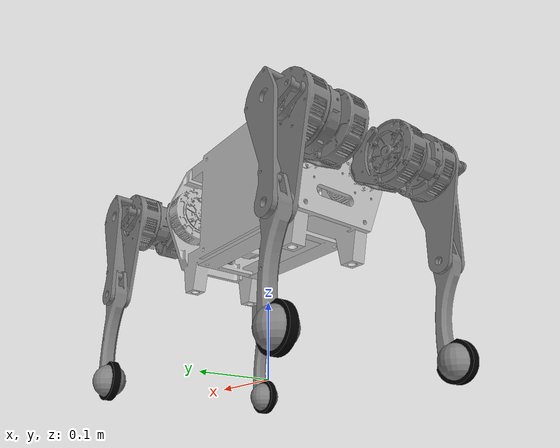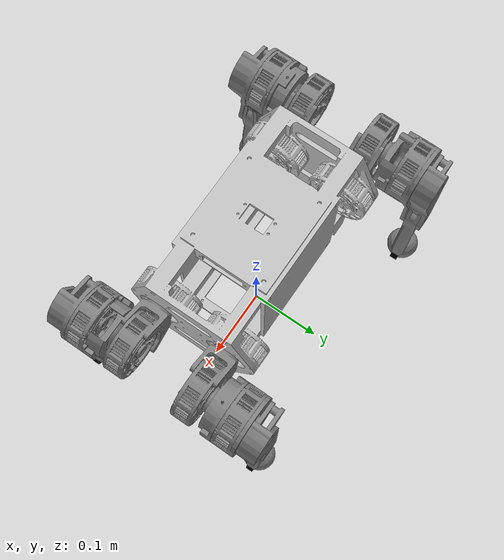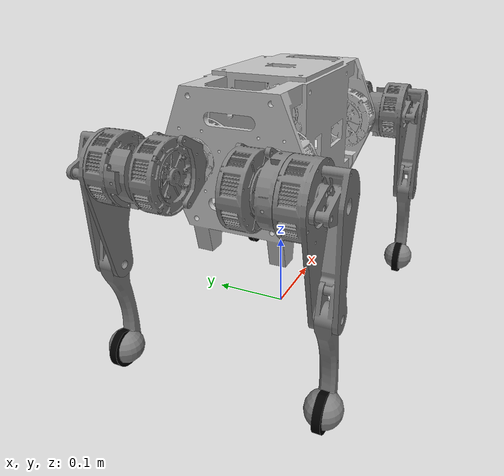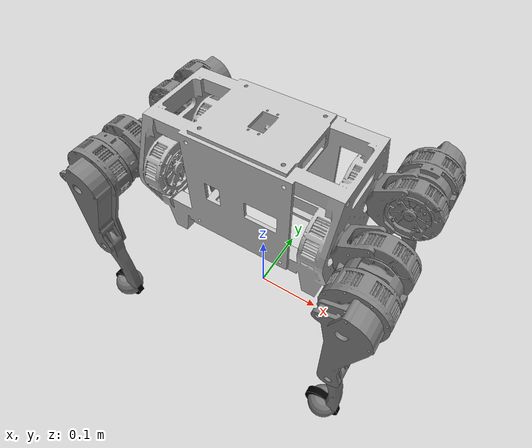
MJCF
<mujoco model="mbf">
  <compiler angle="radian" meshdir="assets" autolimits="true" balanceinertia="true"/>

  <default>
    <default class="robot">
      <default class="shoulder_joint">
        <joint armature="0.003" damping="0.135" frictionloss="0.228"/>
      </default>
      <default class="hip_joint">
        <joint armature="0.003" damping="0.175" frictionloss="0.092"/>
      </default>
      <default class="knee_joint">
        <joint armature="0.003" damping="0.176" frictionloss="0.146"/>
      </default>
      <default class="visual">
        <geom type="mesh" contype="0" conaffinity="0" group="2"/>
      </default>
      <default class="collision">
        <geom type="mesh" contype="1" conaffinity="1" group="3"/>
        <default class="foot">
          <geom type="sphere" size="0.022"/>
        </default>
      </default>
    </default>
  </default>

  <asset>
    <material name="chassis_material" rgba="0.74902 0.74902 0.74902 1"/>
    <material name="shoulder_material" rgba="0.498039 0.498039 0.498039 1"/>
    <material name="hip_material" rgba="0.498039 0.498039 0.498039 1"/>
    <material name="knee_material" rgba="0.498039 0.498039 0.498039 1"/>
    <material name="feet_material" rgba="0 0 0 1"/>

    <mesh name="chassis" file="chassis.stl"/>
    <mesh name="shoulder" file="shoulder.stl"/>
    <mesh name="lefthip" file="lefthip.stl"/>
    <mesh name="rightthip" file="rightthip.stl"/>
    <mesh name="leftknee" file="leftknee.stl"/>
    <mesh name="rightknee" file="rightknee.stl"/>
    <mesh name="feet" file="feet.stl"/>
  </asset>

  <worldbody>
    <!-- Kinematics / inertias match mbf_description/urdf/mbf.urdf. -->
    <body name="chassis" pos="0 0 0.25" childclass="robot">
      <freejoint name="floating_base"/>
      <inertial pos="-7.49398e-05 0.00038654 -0.00334968" mass="2.5"
        fullinertia="0.0140758 0.0300982 0.032291 -1.03544e-05 1.89531e-06 -3.2478e-06"/>
      <camera name="tracking" pos="0.846 -1.3 0.316"
        xyaxes="0.866 0.500 0.000 -0.171 0.296 0.940" mode="trackcom"/>
      <camera name="side" pos="0 -1 .3" xyaxes="1 0 0 0 1 2" mode="trackcom"/>
      <camera name="back" pos="-1 0 .3" xyaxes="0 -1 0 1 0 2" mode="trackcom"/>
      <site name="imu" pos="0 0 0" group="5"/>
      <geom name="chassis_visual" mesh="chassis" material="chassis_material" class="visual"/>
      <geom name="chassis_collision" mesh="chassis" class="collision"/>

      <!-- FL -->
      <body name="fl_shoulder_link" pos="0.1835 0.0475 0">
        <inertial pos="-0.00598552 0.00880498 0.00146505" mass="0.42"
          fullinertia="0.000238461 0.000387612 0.00033247 -2.21138e-05 -3.70032e-06 -1.53448e-05"/>
        <joint name="fl_shoulder_joint" class="shoulder_joint"
          axis="1 0 0" range="-1.0472 1.0472"/>
        <!-- URDF visual rpy = (pi, 0, pi/2) -->
        <geom name="fl_shoulder_link_visual" quat="0 0.707107 0.707107 0" mesh="shoulder"
          material="shoulder_material" class="visual"/>
        <geom name="fl_shoulder_link_collision" type="box" quat="0 0.707107 0.707107 0"
          pos="-0.0075 0.0123 0" size="0.0302 0.0475 0.04" class="collision"/>
        <body name="fl_hip_link" pos="0 0.0835 0">
          <inertial pos="0.000597466 -0.0146741 -0.0153971" mass="0.7"
            fullinertia="0.0011656 0.00123583 0.000397878 -1.25867e-05 -1.45116e-05 0.000143806"/>
          <joint name="fl_hip_joint" class="hip_joint"
            axis="0 1 0" range="-1.7 3.5"/>
          <geom name="fl_hip_link_visual" mesh="lefthip" material="hip_material" class="visual"/>
          <geom name="fl_hip_link_collision" type="capsule" pos="0 -0.0148 -0.0475"
            size="0.0345 0.0530" class="collision"/>
          <body name="fl_knee_link" pos="0 0 -0.12">
            <inertial pos="0.00415201 -2.15069e-05 -0.0486477" mass="0.1"
              fullinertia="0.000258578 0.000265226 1.25963e-05 4.362e-09 9.89836e-06 -1.9627e-08"/>
            <joint name="fl_knee_joint" class="knee_joint"
              axis="0 1 0" range="-2.5 0"/>
            <geom name="fl_knee_link_visual" mesh="leftknee" material="knee_material" class="visual"/>
            <geom name="fl_knee_link_collision" type="capsule" pos="0.001 0 -0.0513"
              size="0.0137 0.0750" class="collision"/>
            <body name="fl_foot_link" pos="0 0 -0.12">
              <inertial pos="-0.00526123 0 -0.00526123" mass="0.01"
                diaginertia="2.47992e-06 4.79318e-06 2.47992e-06"/>
              <geom name="fl_foot_visual" mesh="feet" material="feet_material" class="visual"/>
              <site name="fl_foot" pos="0 0 0" type="sphere" size="0.022"/>
              <geom name="fl_foot_collision" class="foot"/>
            </body>
          </body>
        </body>
      </body>

      <!-- FR -->
      <body name="fr_shoulder_link" pos="0.1835 -0.0475 0">
        <inertial pos="-0.00598552 -0.00880498 -0.00146505" mass="0.42"
          fullinertia="0.000238461 0.000387612 0.00033247 2.21138e-05 3.70032e-06 -1.53448e-05"/>
        <joint name="fr_shoulder_joint" class="shoulder_joint"
          axis="1 0 0" range="-1.0472 1.0472"/>
        <!-- URDF visual rpy = (0, 0, -pi/2) -->
        <geom name="fr_shoulder_link_visual" quat="0.707107 0 0 -0.707107" mesh="shoulder"
          material="shoulder_material" class="visual"/>
        <geom name="fr_shoulder_link_collision" type="box" quat="0.707107 0 0 -0.707107"
          pos="-0.0075 -0.0123 0" size="0.0302 0.0475 0.04" class="collision"/>
        <body name="fr_hip_link" pos="0 -0.0835 0">
          <inertial pos="0.000597465 0.0146741 -0.0153971" mass="0.7"
            fullinertia="0.0011656 0.00123583 0.000397878 1.25867e-05 -1.45116e-05 -0.000143806"/>
          <joint name="fr_hip_joint" class="hip_joint"
            axis="0 1 0" range="-1.7 3.5"/>
          <!-- URDF visual rpy = (0, 0, -pi/2) -->
          <geom name="fr_hip_link_visual" quat="0.707107 0 0 -0.707107" mesh="rightthip"
            material="hip_material" class="visual"/>
          <geom name="fr_hip_link_collision" type="capsule" quat="0.707107 0 0 -0.707107"
            pos="0 0.0148 -0.0475" size="0.0345 0.0530" class="collision"/>
          <body name="fr_knee_link" pos="0 0 -0.12">
            <inertial pos="0.00415201 2.15069e-05 -0.0486477" mass="0.1"
              fullinertia="0.000258578 0.000265226 1.25963e-05 -4.362e-09 9.89836e-06 1.9627e-08"/>
            <joint name="fr_knee_joint" class="knee_joint"
              axis="0 1 0" range="-2.5 0"/>
            <geom name="fr_knee_link_visual" mesh="rightknee" material="knee_material" class="visual"/>
            <geom name="fr_knee_link_collision" type="capsule" pos="0.001 0 -0.0513"
              size="0.0137 0.0750" class="collision"/>
            <body name="fr_foot_link" pos="0 0 -0.12">
              <inertial pos="-0.00526123 0 -0.00526123" mass="0.01"
                diaginertia="2.47992e-06 4.79318e-06 2.47992e-06"/>
              <geom name="fr_foot_visual" mesh="feet" material="feet_material" class="visual"/>
              <site name="fr_foot" pos="0 0 0" type="sphere" size="0.022"/>
              <geom name="fr_foot_collision" class="foot"/>
            </body>
          </body>
        </body>
      </body>

      <!-- RL -->
      <body name="rl_shoulder_link" pos="-0.1835 0.0475 0">
        <inertial pos="0.00598552 0.00880498 -0.00146505" mass="0.42"
          fullinertia="0.000238461 0.000387612 0.00033247 2.21138e-05 -3.70032e-06 1.53448e-05"/>
        <joint name="rl_shoulder_joint" class="shoulder_joint"
          axis="1 0 0" range="-1.0472 1.0472"/>
        <!-- URDF visual rpy = (0, 0, pi/2) -->
        <geom name="rl_shoulder_link_visual" quat="0.707107 0 0 0.707107" mesh="shoulder"
          material="shoulder_material" class="visual"/>
        <geom name="rl_shoulder_link_collision" type="box" quat="0.707107 0 0 0.707107"
          pos="0.0075 0.0123 0" size="0.0302 0.0475 0.04" class="collision"/>
        <body name="rl_hip_link" pos="0 0.0835 0">
          <inertial pos="0.000597466 -0.0146741 -0.0153971" mass="0.7"
            fullinertia="0.0011656 0.00123583 0.000397878 -1.25867e-05 -1.45116e-05 0.000143806"/>
          <joint name="rl_hip_joint" class="hip_joint"
            axis="0 1 0" range="-1.7 3.5"/>
          <geom name="rl_hip_link_visual" mesh="lefthip" material="hip_material" class="visual"/>
          <geom name="rl_hip_link_collision" type="capsule" pos="0 -0.0148 -0.0475"
            size="0.0345 0.0530" class="collision"/>
          <body name="rl_knee_link" pos="0 0 -0.12">
            <inertial pos="0.00415201 -2.15069e-05 -0.0486477" mass="0.1"
              fullinertia="0.000258578 0.000265226 1.25963e-05 4.362e-09 9.89836e-06 -1.9627e-08"/>
            <joint name="rl_knee_joint" class="knee_joint"
              axis="0 1 0" range="-2.5 0"/>
            <geom name="rl_knee_link_visual" mesh="leftknee" material="knee_material" class="visual"/>
            <geom name="rl_knee_link_collision" type="capsule" pos="0.001 0 -0.0513"
              size="0.0137 0.0750" class="collision"/>
            <body name="rl_foot_link" pos="0 0 -0.12">
              <inertial pos="-0.00526123 0 -0.00526123" mass="0.01"
                diaginertia="2.47992e-06 4.79318e-06 2.47992e-06"/>
              <geom name="rl_foot_visual" mesh="feet" material="feet_material" class="visual"/>
              <site name="rl_foot" pos="0 0 0" type="sphere" size="0.022"/>
              <geom name="rl_foot_collision" class="foot"/>
            </body>
          </body>
        </body>
      </body>

      <!-- RR -->
      <body name="rr_shoulder_link" pos="-0.1835 -0.0475 0">
        <inertial pos="0.00598552 -0.00880498 0.00146505" mass="0.42"
          fullinertia="0.000238461 0.000387612 0.00033247 -2.21138e-05 3.70032e-06 1.53448e-05"/>
        <joint name="rr_shoulder_joint" class="shoulder_joint"
          axis="1 0 0" range="-1.0472 1.0472"/>
        <!-- URDF visual rpy = (-pi, 0, -pi/2) -->
        <geom name="rr_shoulder_link_visual" quat="0 -0.707107 0.707107 0" mesh="shoulder"
          material="shoulder_material" class="visual"/>
        <geom name="rr_shoulder_link_collision" type="box" quat="0 -0.707107 0.707107 0"
          pos="0.0075 -0.0123 0" size="0.0302 0.0475 0.04" class="collision"/>
        <body name="rr_hip_link" pos="0 -0.0835 0">
          <inertial pos="0.000597465 0.0146741 -0.0153971" mass="0.7"
            fullinertia="0.0011656 0.00123583 0.000397878 1.25867e-05 -1.45116e-05 -0.000143806"/>
          <joint name="rr_hip_joint" class="hip_joint"
            axis="0 1 0" range="-1.7 3.5"/>
          <!-- URDF visual rpy = (0, 0, -pi/2) -->
          <geom name="rr_hip_link_visual" quat="0.707107 0 0 -0.707107" mesh="rightthip"
            material="hip_material" class="visual"/>
          <geom name="rr_hip_link_collision" type="capsule" quat="0.707107 0 0 -0.707107"
            pos="0 0.0148 -0.0475" size="0.0345 0.0530" class="collision"/>
          <body name="rr_knee_link" pos="0 0 -0.12">
            <inertial pos="0.00415201 2.15069e-05 -0.0486477" mass="0.1"
              fullinertia="0.000258578 0.000265226 1.25963e-05 -4.362e-09 9.89836e-06 1.9627e-08"/>
            <joint name="rr_knee_joint" class="knee_joint"
              axis="0 1 0" range="-2.5 0"/>
            <geom name="rr_knee_link_visual" mesh="rightknee" material="knee_material" class="visual"/>
            <geom name="rr_knee_link_collision" type="capsule" pos="0.001 0 -0.0513"
              size="0.0137 0.0750" class="collision"/>
            <body name="rr_foot_link" pos="0 0 -0.12">
              <inertial pos="-0.00526123 0 -0.00526123" mass="0.01"
                diaginertia="2.47992e-06 4.79318e-06 2.47992e-06"/>
              <geom name="rr_foot_visual" mesh="feet" material="feet_material" class="visual"/>
              <site name="rr_foot" pos="0 0 0" type="sphere" size="0.022"/>
              <geom name="rr_foot_collision" class="foot"/>
            </body>
          </body>
        </body>
      </body>
    </body>
  </worldbody>

  <sensor>
    <velocimeter name="imu_lin_vel" site="imu"/>
    <gyro name="imu_ang_vel" site="imu"/>
    <subtreeangmom name="root_angmom" body="chassis"/>
  </sensor>
</mujoco>
